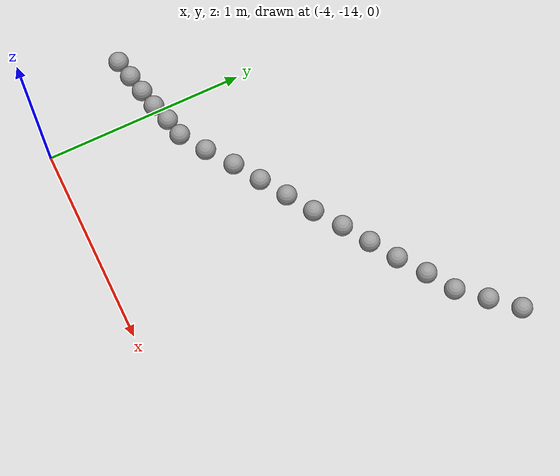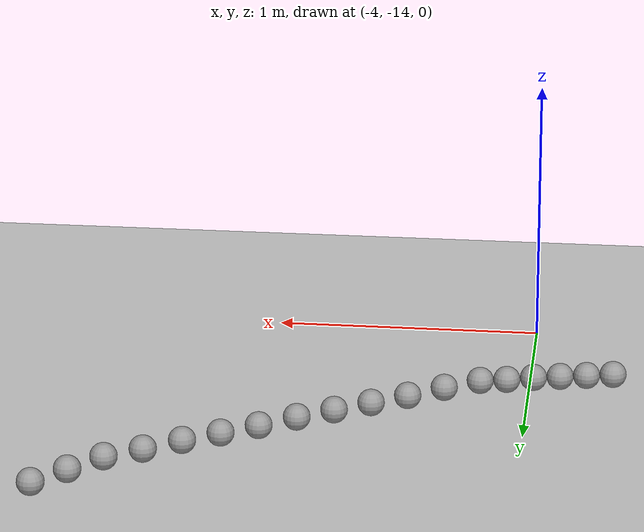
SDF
<sdf version="1.6">
 <world name="default">
  <model name="ground_plane">
   <static>1</static>
   <link name="link">
    <collision name="collision">
     <geometry><plane><normal>0 0 1</normal><size>100 100</size></plane></geometry>
     <surface><friction><ode><mu>100</mu><mu2>50</mu2></ode></friction></surface>
    </collision>
    <visual name="visual">
     <cast_shadows>0</cast_shadows>
     <geometry><plane><normal>0 0 1</normal><size>100 100</size></plane></geometry>
     <material>
      <script><uri>file://media/materials/scripts/gazebo.material</uri><name>Gazebo/Grey</name></script>
     </material>
    </visual>
   </link>
  </model>
  <model name="unit_sphere_0_325">
   <pose>-4.310000 -13.500000 0.050000 0 -0 0</pose>
   <link name="link">
    <inertial>
     <mass>1</mass>
     <inertia><ixx>0.1</ixx><ixy>0</ixy><ixz>0</ixz><iyy>0.1</iyy><iyz>0</iyz><izz>0.1</izz></inertia>
    </inertial>
    <collision name="collision"><geometry><sphere><radius>0.050000</radius></sphere></geometry></collision>
    <visual name="visual">
     <geometry><sphere><radius>0.050000</radius></sphere></geometry>
     <material>
      <script><name>Gazebo/Grey</name><uri>file://media/materials/scripts/gazebo.material</uri></script>
     </material>
    </visual>
   </link>
  </model>
  <model name="unit_sphere_0_326">
   <pose>-4.212000 -13.480000 0.050000 0 -0 0</pose>
   <link name="link">
    <inertial>
     <mass>1</mass>
     <inertia><ixx>0.1</ixx><ixy>0</ixy><ixz>0</ixz><iyy>0.1</iyy><iyz>0</iyz><izz>0.1</izz></inertia>
    </inertial>
    <collision name="collision"><geometry><sphere><radius>0.050000</radius></sphere></geometry></collision>
    <visual name="visual">
     <geometry><sphere><radius>0.050000</radius></sphere></geometry>
     <material>
      <script><name>Gazebo/Grey</name><uri>file://media/materials/scripts/gazebo.material</uri></script>
     </material>
    </visual>
   </link>
  </model>
  <model name="unit_sphere_0_327">
   <pose>-4.114000 -13.460000 0.050000 0 -0 0</pose>
   <link name="link">
    <inertial>
     <mass>1</mass>
     <inertia><ixx>0.1</ixx><ixy>0</ixy><ixz>0</ixz><iyy>0.1</iyy><iyz>0</iyz><izz>0.1</izz></inertia>
    </inertial>
    <collision name="collision"><geometry><sphere><radius>0.050000</radius></sphere></geometry></collision>
    <visual name="visual">
     <geometry><sphere><radius>0.050000</radius></sphere></geometry>
     <material>
      <script><name>Gazebo/Grey</name><uri>file://media/materials/scripts/gazebo.material</uri></script>
     </material>
    </visual>
   </link>
  </model>
  <model name="unit_sphere_0_328">
   <pose>-4.016000 -13.440000 0.050000 0 -0 0</pose>
   <link name="link">
    <inertial>
     <mass>1</mass>
     <inertia><ixx>0.1</ixx><ixy>0</ixy><ixz>0</ixz><iyy>0.1</iyy><iyz>0</iyz><izz>0.1</izz></inertia>
    </inertial>
    <collision name="collision"><geometry><sphere><radius>0.050000</radius></sphere></geometry></collision>
    <visual name="visual">
     <geometry><sphere><radius>0.050000</radius></sphere></geometry>
     <material>
      <script><name>Gazebo/Grey</name><uri>file://media/materials/scripts/gazebo.material</uri></script>
     </material>
    </visual>
   </link>
  </model>
  <model name="unit_sphere_0_329">
   <pose>-3.918000 -13.410000 0.050000 0 -0 0</pose>
   <link name="link">
    <inertial>
     <mass>1</mass>
     <inertia><ixx>0.1</ixx><ixy>0</ixy><ixz>0</ixz><iyy>0.1</iyy><iyz>0</iyz><izz>0.1</izz></inertia>
    </inertial>
    <collision name="collision"><geometry><sphere><radius>0.050000</radius></sphere></geometry></collision>
    <visual name="visual">
     <geometry><sphere><radius>0.050000</radius></sphere></geometry>
     <material>
      <script><name>Gazebo/Grey</name><uri>file://media/materials/scripts/gazebo.material</uri></script>
     </material>
    </visual>
   </link>
  </model>
  <model name="unit_sphere_0_330">
   <pose>-3.820000 -13.390000 0.050000 0 -0 0</pose>
   <link name="link">
    <inertial>
     <mass>1</mass>
     <inertia><ixx>0.1</ixx><ixy>0</ixy><ixz>0</ixz><iyy>0.1</iyy><iyz>0</iyz><izz>0.1</izz></inertia>
    </inertial>
    <collision name="collision"><geometry><sphere><radius>0.050000</radius></sphere></geometry></collision>
    <visual name="visual">
     <geometry><sphere><radius>0.050000</radius></sphere></geometry>
     <material>
      <script><name>Gazebo/Grey</name><uri>file://media/materials/scripts/gazebo.material</uri></script>
     </material>
    </visual>
   </link>
  </model>
  <model name="unit_sphere_0_331">
   <pose>-3.692000 -13.310000 0.050000 0 -0 0</pose>
   <link name="link">
    <inertial>
     <mass>1</mass>
     <inertia><ixx>0.1</ixx><ixy>0</ixy><ixz>0</ixz><iyy>0.1</iyy><iyz>0</iyz><izz>0.1</izz></inertia>
    </inertial>
    <collision name="collision"><geometry><sphere><radius>0.050000</radius></sphere></geometry></collision>
    <visual name="visual">
     <geometry><sphere><radius>0.050000</radius></sphere></geometry>
     <material>
      <script><name>Gazebo/Grey</name><uri>file://media/materials/scripts/gazebo.material</uri></script>
     </material>
    </visual>
   </link>
  </model>
  <model name="unit_sphere_0_332">
   <pose>-3.564000 -13.220000 0.050000 0 -0 0</pose>
   <link name="link">
    <inertial>
     <mass>1</mass>
     <inertia><ixx>0.1</ixx><ixy>0</ixy><ixz>0</ixz><iyy>0.1</iyy><iyz>0</iyz><izz>0.1</izz></inertia>
    </inertial>
    <collision name="collision"><geometry><sphere><radius>0.050000</radius></sphere></geometry></collision>
    <visual name="visual">
     <geometry><sphere><radius>0.050000</radius></sphere></geometry>
     <material>
      <script><name>Gazebo/Grey</name><uri>file://media/materials/scripts/gazebo.material</uri></script>
     </material>
    </visual>
   </link>
  </model>
  <model name="unit_sphere_0_333">
   <pose>-3.436000 -13.140000 0.050000 0 -0 0</pose>
   <link name="link">
    <inertial>
     <mass>1</mass>
     <inertia><ixx>0.1</ixx><ixy>0</ixy><ixz>0</ixz><iyy>0.1</iyy><iyz>0</iyz><izz>0.1</izz></inertia>
    </inertial>
    <collision name="collision"><geometry><sphere><radius>0.050000</radius></sphere></geometry></collision>
    <visual name="visual">
     <geometry><sphere><radius>0.050000</radius></sphere></geometry>
     <material>
      <script><name>Gazebo/Grey</name><uri>file://media/materials/scripts/gazebo.material</uri></script>
     </material>
    </visual>
   </link>
  </model>
  <model name="unit_sphere_0_334">
   <pose>-3.308000 -13.060000 0.050000 0 -0 0</pose>
   <link name="link">
    <inertial>
     <mass>1</mass>
     <inertia><ixx>0.1</ixx><ixy>0</ixy><ixz>0</ixz><iyy>0.1</iyy><iyz>0</iyz><izz>0.1</izz></inertia>
    </inertial>
    <collision name="collision"><geometry><sphere><radius>0.050000</radius></sphere></geometry></collision>
    <visual name="visual">
     <geometry><sphere><radius>0.050000</radius></sphere></geometry>
     <material>
      <script><name>Gazebo/Grey</name><uri>file://media/materials/scripts/gazebo.material</uri></script>
     </material>
    </visual>
   </link>
  </model>
  <model name="unit_sphere_0_335">
   <pose>-3.180000 -12.980000 0.050000 0 -0 0</pose>
   <link name="link">
    <inertial>
     <mass>1</mass>
     <inertia><ixx>0.1</ixx><ixy>0</ixy><ixz>0</ixz><iyy>0.1</iyy><iyz>0</iyz><izz>0.1</izz></inertia>
    </inertial>
    <collision name="collision"><geometry><sphere><radius>0.050000</radius></sphere></geometry></collision>
    <visual name="visual">
     <geometry><sphere><radius>0.050000</radius></sphere></geometry>
     <material>
      <script><name>Gazebo/Grey</name><uri>file://media/materials/scripts/gazebo.material</uri></script>
     </material>
    </visual>
   </link>
  </model>
  <model name="unit_sphere_0_336">
   <pose>-3.052000 -12.890000 0.050000 0 -0 0</pose>
   <link name="link">
    <inertial>
     <mass>1</mass>
     <inertia><ixx>0.1</ixx><ixy>0</ixy><ixz>0</ixz><iyy>0.1</iyy><iyz>0</iyz><izz>0.1</izz></inertia>
    </inertial>
    <collision name="collision"><geometry><sphere><radius>0.050000</radius></sphere></geometry></collision>
    <visual name="visual">
     <geometry><sphere><radius>0.050000</radius></sphere></geometry>
     <material>
      <script><name>Gazebo/Grey</name><uri>file://media/materials/scripts/gazebo.material</uri></script>
     </material>
    </visual>
   </link>
  </model>
  <model name="unit_sphere_0_337">
   <pose>-2.924000 -12.810000 0.050000 0 -0 0</pose>
   <link name="link">
    <inertial>
     <mass>1</mass>
     <inertia><ixx>0.1</ixx><ixy>0</ixy><ixz>0</ixz><iyy>0.1</iyy><iyz>0</iyz><izz>0.1</izz></inertia>
    </inertial>
    <collision name="collision"><geometry><sphere><radius>0.050000</radius></sphere></geometry></collision>
    <visual name="visual">
     <geometry><sphere><radius>0.050000</radius></sphere></geometry>
     <material>
      <script><name>Gazebo/Grey</name><uri>file://media/materials/scripts/gazebo.material</uri></script>
     </material>
    </visual>
   </link>
  </model>
  <model name="unit_sphere_0_338">
   <pose>-2.796000 -12.730000 0.050000 0 -0 0</pose>
   <link name="link">
    <inertial>
     <mass>1</mass>
     <inertia><ixx>0.1</ixx><ixy>0</ixy><ixz>0</ixz><iyy>0.1</iyy><iyz>0</iyz><izz>0.1</izz></inertia>
    </inertial>
    <collision name="collision"><geometry><sphere><radius>0.050000</radius></sphere></geometry></collision>
    <visual name="visual">
     <geometry><sphere><radius>0.050000</radius></sphere></geometry>
     <material>
      <script><name>Gazebo/Grey</name><uri>file://media/materials/scripts/gazebo.material</uri></script>
     </material>
    </visual>
   </link>
  </model>
  <model name="unit_sphere_0_339">
   <pose>-2.668000 -12.640000 0.050000 0 -0 0</pose>
   <link name="link">
    <inertial>
     <mass>1</mass>
     <inertia><ixx>0.1</ixx><ixy>0</ixy><ixz>0</ixz><iyy>0.1</iyy><iyz>0</iyz><izz>0.1</izz></inertia>
    </inertial>
    <collision name="collision"><geometry><sphere><radius>0.050000</radius></sphere></geometry></collision>
    <visual name="visual">
     <geometry><sphere><radius>0.050000</radius></sphere></geometry>
     <material>
      <script><name>Gazebo/Grey</name><uri>file://media/materials/scripts/gazebo.material</uri></script>
     </material>
    </visual>
   </link>
  </model>
  <model name="unit_sphere_0_340">
   <pose>-2.540000 -12.560000 0.050000 0 -0 0</pose>
   <link name="link">
    <inertial>
     <mass>1</mass>
     <inertia><ixx>0.1</ixx><ixy>0</ixy><ixz>0</ixz><iyy>0.1</iyy><iyz>0</iyz><izz>0.1</izz></inertia>
    </inertial>
    <collision name="collision"><geometry><sphere><radius>0.050000</radius></sphere></geometry></collision>
    <visual name="visual">
     <geometry><sphere><radius>0.050000</radius></sphere></geometry>
     <material>
      <script><name>Gazebo/Grey</name><uri>file://media/materials/scripts/gazebo.material</uri></script>
     </material>
    </visual>
   </link>
  </model>
  <model name="unit_sphere_0_341">
   <pose>-2.431000 -12.440000 0.050000 0 -0 0</pose>
   <link name="link">
    <inertial>
     <mass>1</mass>
     <inertia><ixx>0.1</ixx><ixy>0</ixy><ixz>0</ixz><iyy>0.1</iyy><iyz>0</iyz><izz>0.1</izz></inertia>
    </inertial>
    <collision name="collision"><geometry><sphere><radius>0.050000</radius></sphere></geometry></collision>
    <visual name="visual">
     <geometry><sphere><radius>0.050000</radius></sphere></geometry>
     <material>
      <script><name>Gazebo/Grey</name><uri>file://media/materials/scripts/gazebo.material</uri></script>
     </material>
    </visual>
   </link>
  </model>
  <model name="unit_sphere_0_342">
   <pose>-2.322000 -12.320000 0.050000 0 -0 0</pose>
   <link name="link">
    <inertial>
     <mass>1</mass>
     <inertia><ixx>0.1</ixx><ixy>0</ixy><ixz>0</ixz><iyy>0.1</iyy><iyz>0</iyz><izz>0.1</izz></inertia>
    </inertial>
    <collision name="collision"><geometry><sphere><radius>0.050000</radius></sphere></geometry></collision>
    <visual name="visual">
     <geometry><sphere><radius>0.050000</radius></sphere></geometry>
     <material>
      <script><name>Gazebo/Grey</name><uri>file://media/materials/scripts/gazebo.material</uri></script>
     </material>
    </visual>
   </link>
  </model>
 </world>
</sdf>
